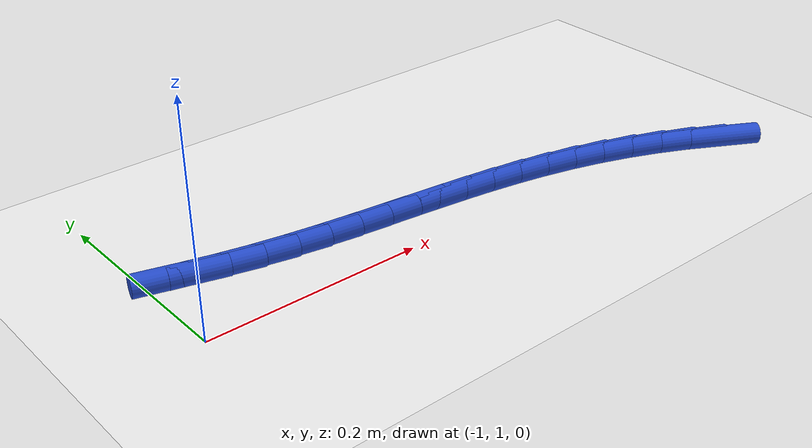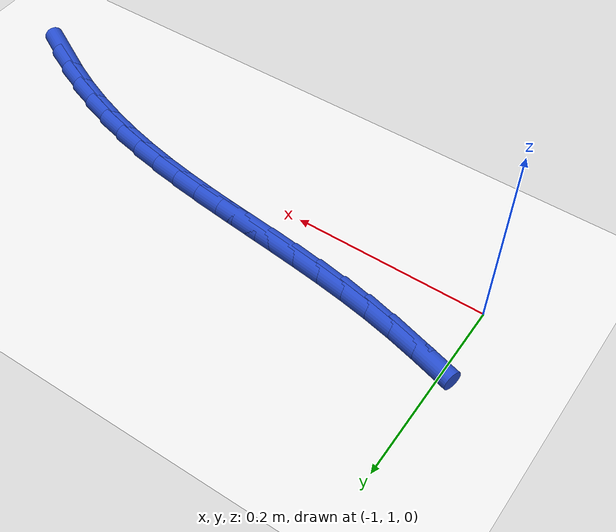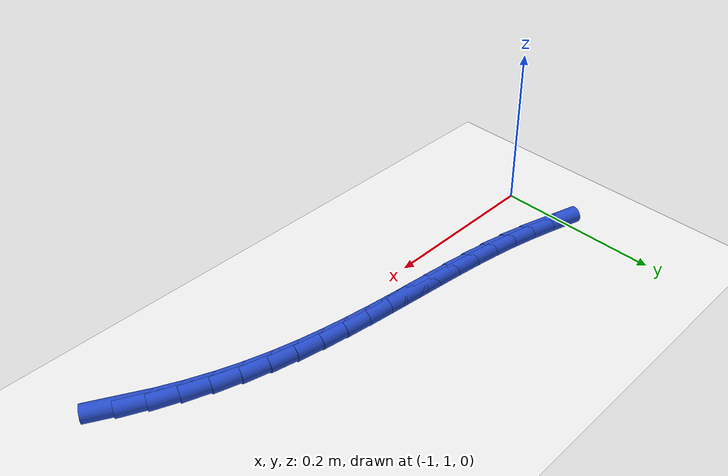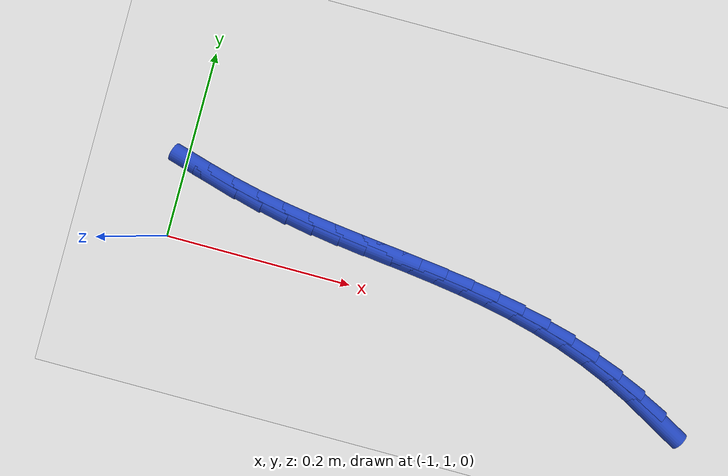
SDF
<sdf version="1.6">
 <world name="default">
  <model name="ground_plane">
   <static>1</static>
   <link name="link">
    <collision name="collision">
     <geometry><plane><normal>0 0 1</normal><size>100 100</size></plane></geometry>
     <surface><friction><ode><mu>100</mu><mu2>50</mu2></ode></friction></surface>
    </collision>
    <visual name="visual">
     <cast_shadows>0</cast_shadows>
     <geometry><plane><normal>0 0 1</normal><size>100 100</size></plane></geometry>
     <material>
      <script><uri>file://media/materials/scripts/gazebo.material</uri><name>Gazebo/WhiteGlow</name></script>
     </material>
    </visual>
   </link>
  </model>
  <model name="line">
   <link name="link_37">
    <pose>-0.4578015369947518 0.9521982518283214 0.01 0 1.57 -0.5120446028015501</pose>
    <collision name="collision">
     <geometry><cylinder><radius>0.01</radius><length>0.08</length></cylinder></geometry>
    </collision>
    <visual name="visual">
     <material>
      <script><name>Gazebo/Blue</name><uri>file://media/materials/scripts/gazebo.material</uri></script>
     </material>
     <geometry><cylinder><radius>0.01</radius><length>0.08</length></cylinder></geometry>
    </visual>
   </link>
   <link name="link_38">
    <pose>-0.48455148483244176 0.9672329560989088 0.01 0 1.57 -0.4546086128311678</pose>
    <collision name="collision">
     <geometry><cylinder><radius>0.01</radius><length>0.08</length></cylinder></geometry>
    </collision>
    <visual name="visual">
     <material>
      <script><name>Gazebo/Blue</name><uri>file://media/materials/scripts/gazebo.material</uri></script>
     </material>
     <geometry><cylinder><radius>0.01</radius><length>0.08</length></cylinder></geometry>
    </visual>
   </link>
   <link name="link_39">
    <pose>-0.5122105533229622 0.9807513751877388 0.01 0 1.57 -0.40015327292221275</pose>
    <collision name="collision">
     <geometry><cylinder><radius>0.01</radius><length>0.08</length></cylinder></geometry>
    </collision>
    <visual name="visual">
     <material>
      <script><name>Gazebo/Blue</name><uri>file://media/materials/scripts/gazebo.material</uri></script>
     </material>
     <geometry><cylinder><radius>0.01</radius><length>0.08</length></cylinder></geometry>
    </visual>
   </link>
   <link name="link_40">
    <pose>-0.5405508500683848 0.992738581072801 0.01 0 1.57 -0.3478705174542795</pose>
    <collision name="collision">
     <geometry><cylinder><radius>0.01</radius><length>0.08</length></cylinder></geometry>
    </collision>
    <visual name="visual">
     <material>
      <script><name>Gazebo/Blue</name><uri>file://media/materials/scripts/gazebo.material</uri></script>
     </material>
     <geometry><cylinder><radius>0.01</radius><length>0.08</length></cylinder></geometry>
    </visual>
   </link>
   <link name="link_41">
    <pose>-0.5693444826707813 1.0031796457320858 0.01 0 1.57 -0.2969850269026818</pose>
    <collision name="collision">
     <geometry><cylinder><radius>0.01</radius><length>0.08</length></cylinder></geometry>
    </collision>
    <visual name="visual">
     <material>
      <script><name>Gazebo/Blue</name><uri>file://media/materials/scripts/gazebo.material</uri></script>
     </material>
     <geometry><cylinder><radius>0.01</radius><length>0.08</length></cylinder></geometry>
    </visual>
   </link>
   <link name="link_42">
    <pose>-0.5983645521219593 1.0120608272113627 0.01 0 1.57 -0.24893454527413506</pose>
    <collision name="collision">
     <geometry><cylinder><radius>0.01</radius><length>0.08</length></cylinder></geometry>
    </collision>
    <visual name="visual">
     <material>
      <script><name>Gazebo/Blue</name><uri>file://media/materials/scripts/gazebo.material</uri></script>
     </material>
     <geometry><cylinder><radius>0.01</radius><length>0.08</length></cylinder></geometry>
    </visual>
   </link>
   <link name="link_43">
    <pose>-0.6274580510673612 1.0194566072478535 0.01 0 1.57 -0.20743782805276378</pose>
    <collision name="collision">
     <geometry><cylinder><radius>0.01</radius><length>0.08</length></cylinder></geometry>
    </collision>
    <visual name="visual">
     <material>
      <script><name>Gazebo/Blue</name><uri>file://media/materials/scripts/gazebo.material</uri></script>
     </material>
     <geometry><cylinder><radius>0.01</radius><length>0.08</length></cylinder></geometry>
    </visual>
   </link>
   <link name="link_44">
    <pose>-0.6565955764009695 1.0255890461285768 0.01 0 1.57 -0.17329635866732881</pose>
    <collision name="collision">
     <geometry><cylinder><radius>0.01</radius><length>0.08</length></cylinder></geometry>
    </collision>
    <visual name="visual">
     <material>
      <script><name>Gazebo/Blue</name><uri>file://media/materials/scripts/gazebo.material</uri></script>
     </material>
     <geometry><cylinder><radius>0.01</radius><length>0.08</length></cylinder></geometry>
    </visual>
   </link>
   <link name="link_45">
    <pose>-0.6857594935516883 1.0306942553025245 0.01 0 1.57 -0.14681715773072526</pose>
    <collision name="collision">
     <geometry><cylinder><radius>0.01</radius><length>0.08</length></cylinder></geometry>
    </collision>
    <visual name="visual">
     <material>
      <script><name>Gazebo/Blue</name><uri>file://media/materials/scripts/gazebo.material</uri></script>
     </material>
     <geometry><cylinder><radius>0.01</radius><length>0.08</length></cylinder></geometry>
    </visual>
   </link>
   <link name="link_46">
    <pose>-0.7149321679484211 1.0350083462186883 0.01 0 1.57 -0.12818877107740248</pose>
    <collision name="collision">
     <geometry><cylinder><radius>0.01</radius><length>0.08</length></cylinder></geometry>
    </collision>
    <visual name="visual">
     <material>
      <script><name>Gazebo/Blue</name><uri>file://media/materials/scripts/gazebo.material</uri></script>
     </material>
     <geometry><cylinder><radius>0.01</radius><length>0.08</length></cylinder></geometry>
    </visual>
   </link>
   <link name="link_47">
    <pose>-0.7440959650200716 1.038767430326061 0.01 0 1.57 -0.11752418151627553</pose>
    <collision name="collision">
     <geometry><cylinder><radius>0.01</radius><length>0.08</length></cylinder></geometry>
    </collision>
    <visual name="visual">
     <material>
      <script><name>Gazebo/Blue</name><uri>file://media/materials/scripts/gazebo.material</uri></script>
     </material>
     <geometry><cylinder><radius>0.01</radius><length>0.08</length></cylinder></geometry>
    </visual>
   </link>
   <link name="link_48">
    <pose>-0.7732332501955433 1.0422076190736334 0.01 0 1.57 -0.11489370879194383</pose>
    <collision name="collision">
     <geometry><cylinder><radius>0.01</radius><length>0.08</length></cylinder></geometry>
    </collision>
    <visual name="visual">
     <material>
      <script><name>Gazebo/Blue</name><uri>file://media/materials/scripts/gazebo.material</uri></script>
     </material>
     <geometry><cylinder><radius>0.01</radius><length>0.08</length></cylinder></geometry>
    </visual>
   </link>
   <link name="link_49">
    <pose>-0.80232638890374 1.045565023910398 0.01 0 1.57 -0.12034461445732512</pose>
    <collision name="collision">
     <geometry><cylinder><radius>0.01</radius><length>0.08</length></cylinder></geometry>
    </collision>
    <visual name="visual">
     <material>
      <script><name>Gazebo/Blue</name><uri>file://media/materials/scripts/gazebo.material</uri></script>
     </material>
     <geometry><cylinder><radius>0.01</radius><length>0.08</length></cylinder></geometry>
    </visual>
   </link>
   <link name="link_50">
    <pose>-0.8313577465735656 1.049075756285347 0.01 0 1.57 -0.13390578188499033</pose>
    <collision name="collision">
     <geometry><cylinder><radius>0.01</radius><length>0.08</length></cylinder></geometry>
    </collision>
    <visual name="visual">
     <material>
      <script><name>Gazebo/Blue</name><uri>file://media/materials/scripts/gazebo.material</uri></script>
     </material>
     <geometry><cylinder><radius>0.01</radius><length>0.08</length></cylinder></geometry>
    </visual>
   </link>
   <link name="link_51">
    <pose>-0.8603096886339238 1.0529759276474722 0.01 0 1.57 -0.1555767067208262</pose>
    <collision name="collision">
     <geometry><cylinder><radius>0.01</radius><length>0.08</length></cylinder></geometry>
    </collision>
    <visual name="visual">
     <material>
      <script><name>Gazebo/Blue</name><uri>file://media/materials/scripts/gazebo.material</uri></script>
     </material>
     <geometry><cylinder><radius>0.01</radius><length>0.08</length></cylinder></geometry>
    </visual>
   </link>
   <link name="link_52">
    <pose>-0.8891645805137176 1.0575016494457647 0.01 0 1.57 -0.18530071850197205</pose>
    <collision name="collision">
     <geometry><cylinder><radius>0.01</radius><length>0.08</length></cylinder></geometry>
    </collision>
    <visual name="visual">
     <material>
      <script><name>Gazebo/Blue</name><uri>file://media/materials/scripts/gazebo.material</uri></script>
     </material>
     <geometry><cylinder><radius>0.01</radius><length>0.08</length></cylinder></geometry>
    </visual>
   </link>
   <link name="link_53">
    <pose>-0.9179047876418517 1.0628890331292178 0.01 0 1.57 -0.22275290566603131</pose>
    <collision name="collision">
     <geometry><cylinder><radius>0.01</radius><length>0.08</length></cylinder></geometry>
    </collision>
    <visual name="visual">
     <material>
      <script><name>Gazebo/Blue</name><uri>file://media/materials/scripts/gazebo.material</uri></script>
     </material>
     <geometry><cylinder><radius>0.01</radius><length>0.08</length></cylinder></geometry>
    </visual>
   </link>
   <link name="link_54">
    <pose>-0.9465131996557178 1.0693691753389878 0.01 0 1.57 -0.25923176158261857</pose>
    <collision name="collision">
     <geometry><cylinder><radius>0.01</radius><length>0.08</length></cylinder></geometry>
    </collision>
    <visual name="visual">
     <material>
      <script><name>Gazebo/Blue</name><uri>file://media/materials/scripts/gazebo.material</uri></script>
     </material>
     <geometry><cylinder><radius>0.01</radius><length>0.08</length></cylinder></geometry>
    </visual>
   </link>
   <link name="link_55">
    <pose>-0.974998801717022 1.0769235315094605 0.01 0 1.57 -0.28262273843052116</pose>
    <collision name="collision">
     <geometry><cylinder><radius>0.01</radius><length>0.08</length></cylinder></geometry>
    </collision>
    <visual name="visual">
     <material>
      <script><name>Gazebo/Blue</name><uri>file://media/materials/scripts/gazebo.material</uri></script>
     </material>
     <geometry><cylinder><radius>0.01</radius><length>0.08</length></cylinder></geometry>
    </visual>
   </link>
  </model>
 </world>
</sdf>
